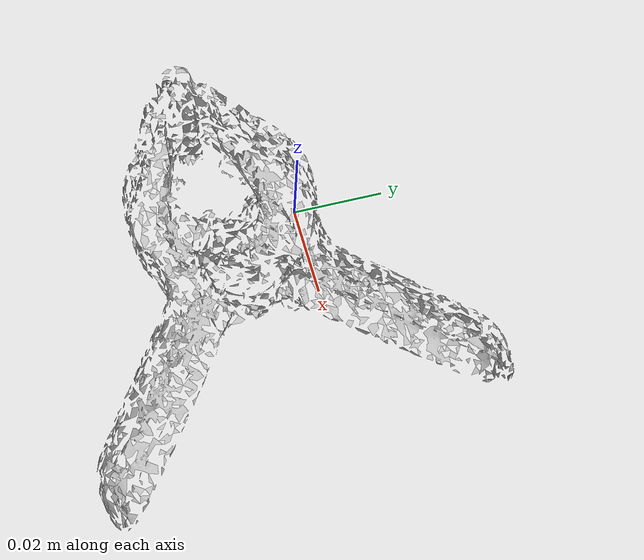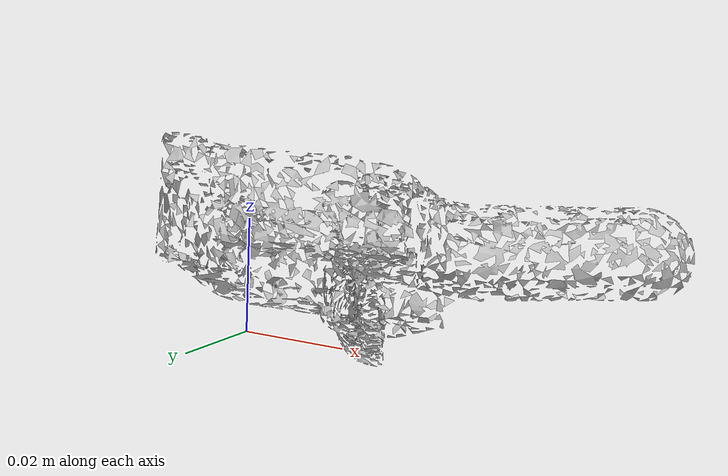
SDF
<?xml version='1.0'?>
<sdf version="1.4">
  <model name="medium_clamp">
    <static>false</static>
    <link name="link">
      <inertial>
        <pose>0.010827483056379221 -0.014903599956658636 0.012617934887942762 -1.8011855354168393 -1.557246698261016 1.9401151712398863</pose>
        <mass>2.2388684701155667e-05</mass>
        <inertia>
          <ixx>1.3188020578349315e-08</ixx>
          <ixy>2.0268557059467663e-26</ixy>
          <ixz>-1.0920047845411684e-27</ixz>
          <iyy>8.670795410871474e-09</iyy>
          <iyz>-3.4285859853008567e-25</iyz>
          <izz>5.803057357417043e-09</izz>
        </inertia>
      </inertial>
      <collision name="collision">
        <geometry>
          <mesh>
            <!-- Use a downsampled mesh for collisions -->
            <uri>model://050_medium_clamp/downsampled.obj</uri>
	        </mesh>
        </geometry>
        <surface>
      </surface>
      </collision>
      <visual name="visual">
        <geometry>
          <mesh>
            <uri>model://050_medium_clamp/google_16k/textured.obj</uri>
	        </mesh>
        </geometry>
        <material>
          <script>
            <uri>model://050_medium_clamp/medium_clamp.material</uri>
            <name>medium_clamp</name>
          </script>
        </material>
      </visual>
    </link>
  </model>
</sdf>
